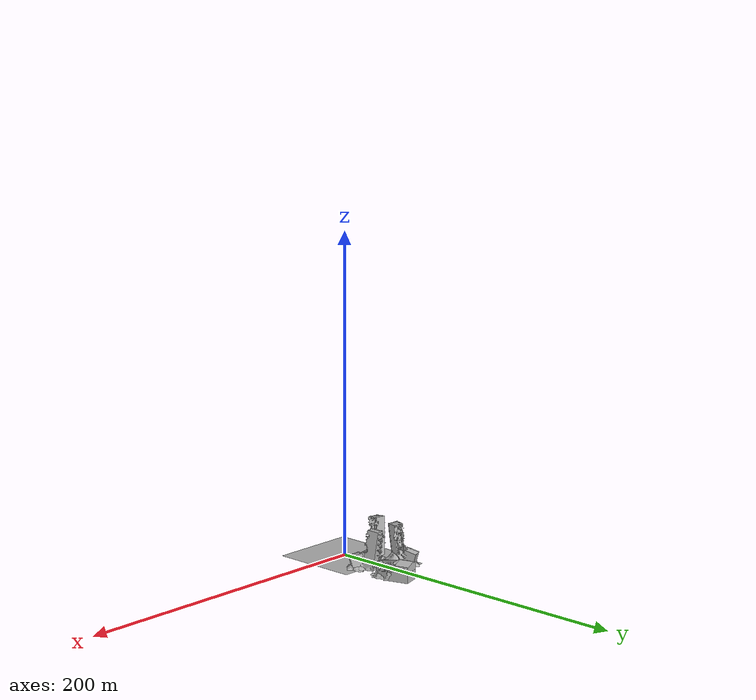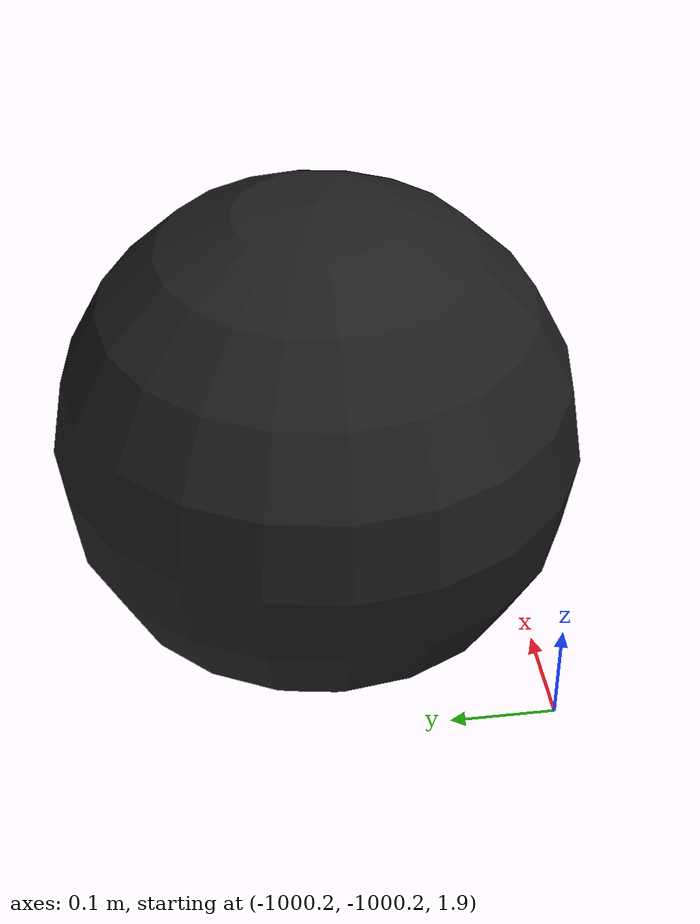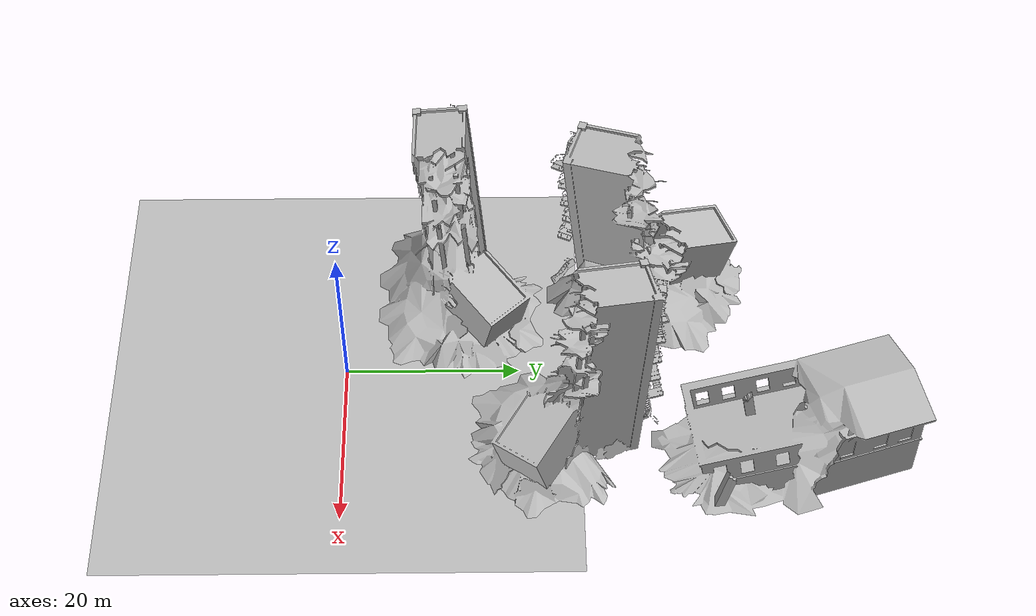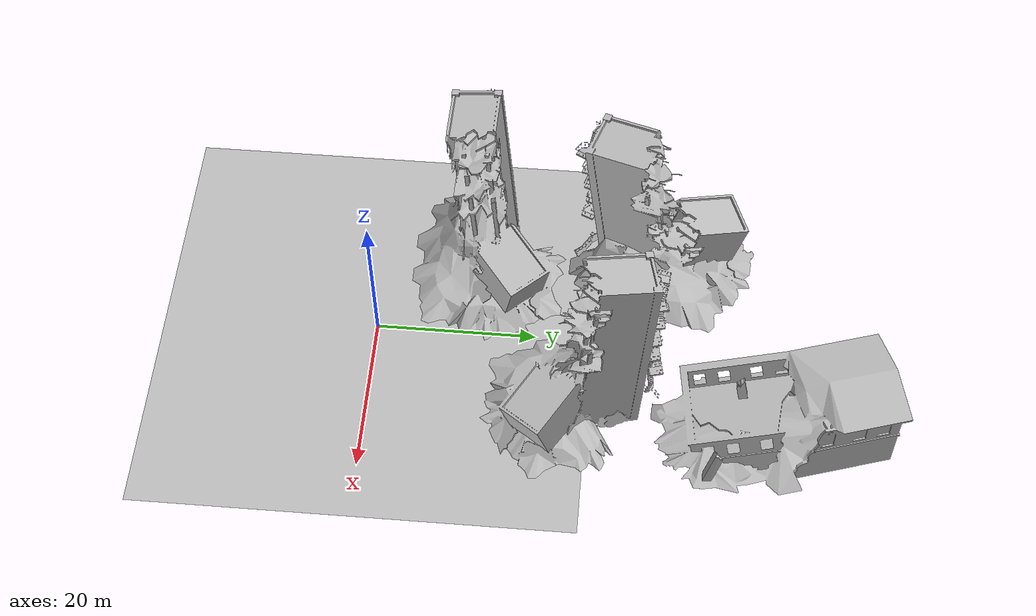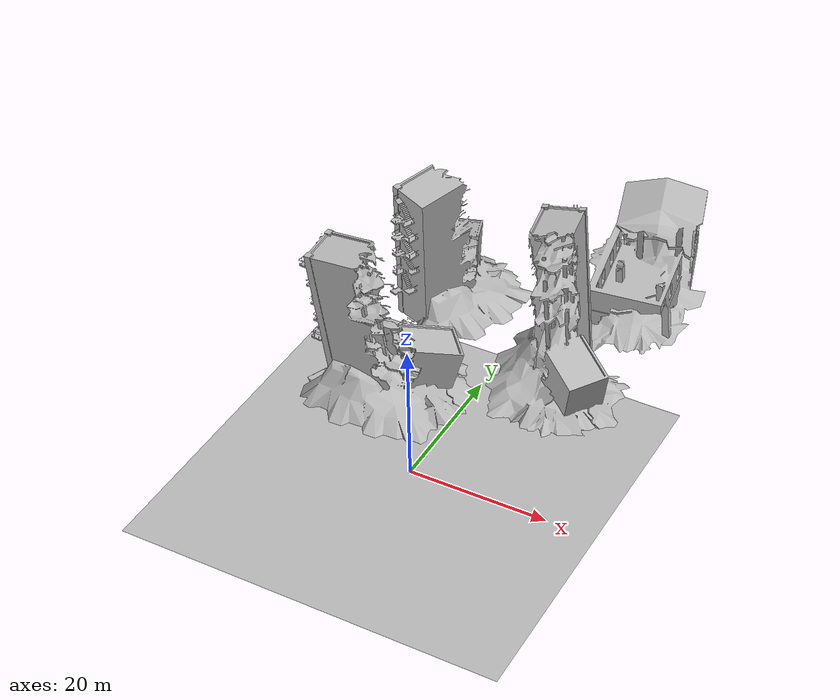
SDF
<sdf version="1.7">
 <world name="default">
  <plugin name="mrs_gazebo_static_transform_republisher_plugin" filename="libMrsGazeboCommonResources_StaticTransformRepublisher.so"/>
  <spherical_coordinates>
   <surface_model>EARTH_WGS84</surface_model>
   <latitude_deg>47.3977</latitude_deg>
   <longitude_deg>8.54559</longitude_deg>
   <elevation>0</elevation>
   <heading_deg>0</heading_deg>
  </spherical_coordinates>
  <physics name="default_physics" default="0" type="ode">
   <ode>
    <solver>
     <type>quick</type>
     <iters>10</iters>
     <sor>1.3</sor>
     <use_dynamic_moi_rescaling>0</use_dynamic_moi_rescaling>
    </solver>
    <constraints>
     <cfm>0</cfm>
     <erp>0.2</erp>
     <contact_max_correcting_vel>1000</contact_max_correcting_vel>
     <contact_surface_layer>0.001</contact_surface_layer>
    </constraints>
   </ode>
   <max_step_size>0.004</max_step_size>
   <real_time_factor>1</real_time_factor>
   <real_time_update_rate>250</real_time_update_rate>
  </physics>
  <scene><shadows>0</shadows><ambient>0.4 0.4 0.4 1</ambient><background>0.7 0.7 0.7 1</background></scene>
  <model name="ground_plane">
   <static>1</static>
   <link name="link">
    <collision name="collision">
     <geometry><plane><normal>0 0 1</normal><size>250 250</size></plane></geometry>
     <surface><contact><ode><min_depth>0.01</min_depth><max_vel>0</max_vel></ode></contact></surface>
    </collision>
    <visual name="grass">
     <cast_shadows>0</cast_shadows>
     <geometry><mesh><uri>file://grass_plane/meshes/grass_plane.dae</uri></mesh></geometry>
    </visual>
   </link>
  </model>
  <model name="the_void">
   <static>1</static>
   <link name="link">
    <pose>0 0 0.1 0 -0 0</pose>
    <visual name="the_void">
     <pose>0 0 2 0 -0 0</pose>
     <geometry><sphere><radius>0.25</radius></sphere></geometry>
     <material>
      <script><uri>file://media/materials/scripts/Gazebo.material</uri><name>Gazebo/Black</name></script>
     </material>
    </visual>
   </link>
   <pose>-1000 -1000 0 0 -0 0</pose>
  </model>
  <plugin name="mrs_gazebo_rviz_cam_synchronizer" filename="libMrsGazeboCommonResources_RvizCameraSynchronizer.so">
   <target_frame_id>gazebo_user_camera</target_frame_id>
   <world_origin_frame_id>uav1/gps_origin</world_origin_frame_id>
   <frame_to_follow>uav1</frame_to_follow>
  </plugin>
  <gravity>0 0 -9.8066</gravity>
  <magnetic_field>6e-06 2.3e-05 -4.2e-05</magnetic_field>
  <atmosphere type="adiabatic"/>
  <model name="collapsed_industrial">
   <static>1</static>
   <link name="link">
    <collision name="collision">
     <geometry><mesh><uri>model://collapsed_industrial/meshes/collapsed_industrial.dae</uri></mesh></geometry>
    </collision>
    <visual name="visual">
     <geometry><mesh><uri>model://collapsed_industrial/meshes/collapsed_industrial.dae</uri></mesh></geometry>
    </visual>
   </link>
   <pose>-11.3686 12.2089 0 0 -0 0</pose>
  </model>
  <model name="collapsed_industrial_clone">
   <static>1</static>
   <link name="link">
    <collision name="collision">
     <geometry><mesh><uri>model://collapsed_industrial/meshes/collapsed_industrial.dae</uri></mesh></geometry>
    </collision>
    <visual name="visual">
     <geometry><mesh><uri>model://collapsed_industrial/meshes/collapsed_industrial.dae</uri></mesh></geometry>
    </visual>
   </link>
   <pose>8.17057 25.9254 0 0 0 -1.3524</pose>
  </model>
  <model name="collapsed_industrial_clone_clone">
   <static>1</static>
   <link name="link">
    <collision name="collision">
     <geometry><mesh><uri>model://collapsed_industrial/meshes/collapsed_industrial.dae</uri></mesh></geometry>
    </collision>
    <visual name="visual">
     <geometry><mesh><uri>model://collapsed_industrial/meshes/collapsed_industrial.dae</uri></mesh></geometry>
    </visual>
   </link>
   <pose>-12.5629 34.5881 0 0 -0 1.22372</pose>
  </model>
  <model name="collapsed_fire_station">
   <static>1</static>
   <link name="link">
    <collision name="collision">
     <geometry><mesh><uri>model://collapsed_fire_station/meshes/collapsed_fire_station.dae</uri></mesh></geometry>
    </collision>
    <visual name="visual">
     <geometry><mesh><uri>model://collapsed_fire_station/meshes/collapsed_fire_station.dae</uri></mesh></geometry>
    </visual>
   </link>
   <pose>11.2255 49.3555 0 0 0 -1.26687</pose>
  </model>
  <light name="user_directional_light_0" type="directional">
   <pose>18.5939 6.77546 1 0 -0 0</pose>
   <diffuse>0.5 0.5 0.5 1</diffuse>
   <specular>0.1 0.1 0.1 1</specular>
   <direction>0.1 0.1 -0.9</direction>
   <attenuation>
    <range>20</range>
    <constant>0.5</constant>
    <linear>0.01</linear>
    <quadratic>0.001</quadratic>
   </attenuation>
  </light>
  <light name="user_directional_light_1" type="directional">
   <pose>-30.2986 28.8316 1 0 -0 0</pose>
   <diffuse>0.5 0.5 0.5 1</diffuse>
   <specular>0.1 0.1 0.1 1</specular>
   <direction>0.1 0.1 -0.9</direction>
   <attenuation>
    <range>20</range>
    <constant>0.5</constant>
    <linear>0.01</linear>
    <quadratic>0.001</quadratic>
   </attenuation>
  </light>
  <light name="sun" type="directional">
   <pose>14.107 -35.5568 10 0 -0 0</pose>
   <diffuse>0.8 0.8 0.8 1</diffuse>
   <specular>0.2 0.2 0.2 1</specular>
   <attenuation>
    <range>1000</range>
    <constant>0.9</constant>
    <linear>0.01</linear>
    <quadratic>0.001</quadratic>
   </attenuation>
   <direction>-0.5 0.1 -0.9</direction>
  </light>
 </world>
</sdf>
